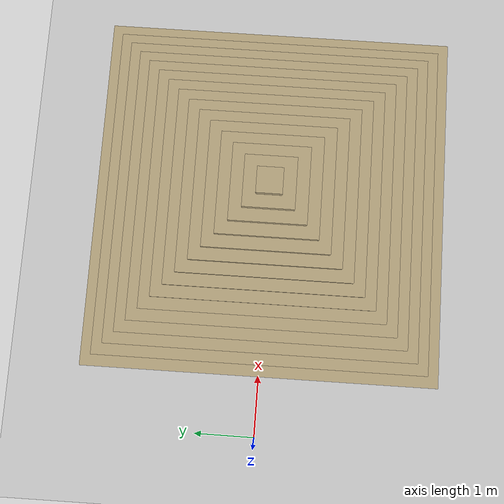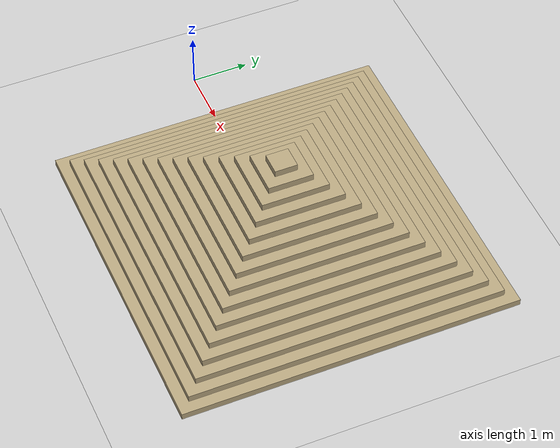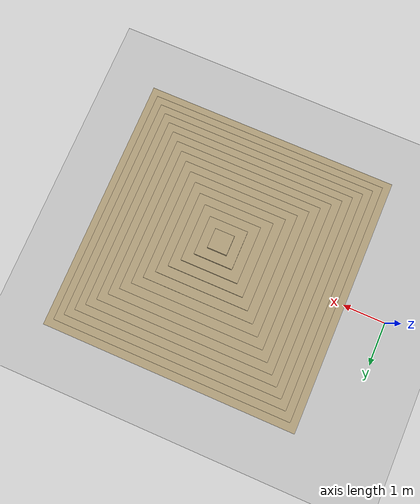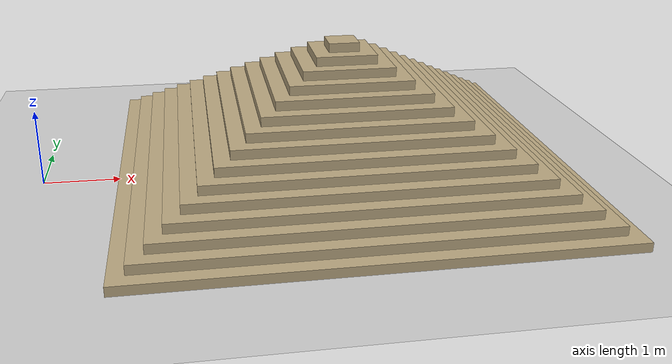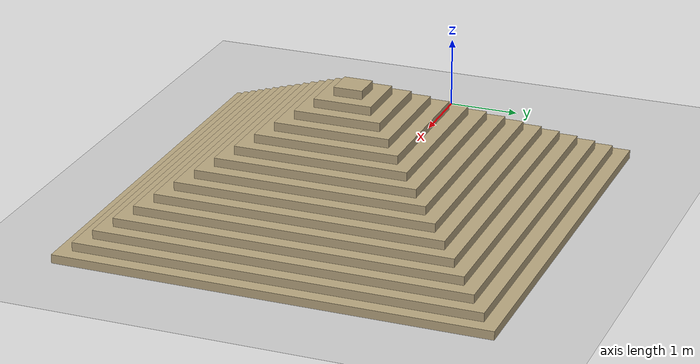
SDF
<?xml version="1.0"?>
<sdf version="1.6">
  <!-- We use a custom world for the rrbot so that the camera angle is launched correctly -->

  <world name="default">

    <plugin
      filename="gz-sim-physics-system"
      name="gz::sim::systems::Physics">
    </plugin>
    <plugin
      filename="gz-sim-air-pressure-system"
      name="gz::sim::systems::AirPressure">
    </plugin>
    <plugin
      filename="gz-sim-altimeter-system"
      name="gz::sim::systems::Altimeter">
    </plugin>
    <plugin
      filename="gz-sim-imu-system"
      name="gz::sim::systems::Imu">
    </plugin>
    <plugin
      filename="gz-sim-sensors-system"
      name="gz::sim::systems::Sensors">
      <render_engine>ogre2</render_engine>
    </plugin>
    <plugin
      filename="gz-sim-magnetometer-system"
      name="gz::sim::systems::Magnetometer">
    </plugin>
    <plugin
      filename="gz-sim-forcetorque-system"
      name="gz::sim::systems::ForceTorque">
    </plugin>
    <plugin
      filename="gz-sim-user-commands-system"
      name="gz::sim::systems::UserCommands">
    </plugin>
    <plugin
      filename="gz-sim-scene-broadcaster-system"
      name="gz::sim::systems::SceneBroadcaster">
    </plugin>
    <gravity>0 0 -9.81</gravity>

    <light type="directional" name="sun">
      <cast_shadows>true</cast_shadows>
      <pose>0 0 10 0 0 0</pose>
      <diffuse>0.8 0.8 0.8 1</diffuse>
      <specular>0.2 0.2 0.2 1</specular>
      <attenuation>
        <range>1000</range>
        <constant>0.9</constant>
        <linear>0.01</linear>
        <quadratic>0.001</quadratic>
      </attenuation>
      <direction>-0.5 0.1 -0.9</direction>
    </light>

    <model name="ground_plane">
      <static>true</static>
      <link name="link">
        <collision name="collision">
          <geometry>
            <plane>
              <normal>0 0 1</normal>
              <size>100 100</size>
            </plane>
          </geometry>
        </collision>
        <visual name="visual">
          <geometry>
            <plane>
              <normal>0 0 1</normal>
              <size>100 100</size>
            </plane>
          </geometry>
          <material>
            <ambient>0.8 0.8 0.8 1</ambient>
            <diffuse>0.8 0.8 0.8 1</diffuse>
            <specular>0.8 0.8 0.8 1</specular>
          </material>
        </visual>
      </link>
    </model>

    <model name="stepped_square_pyramid">
      <static>true</static>
      <pose>4 0 0 0 0 0</pose>
      <link name="pyramid_link">
        <collision name="step_01_collision">
          <pose>0 0 0.06 0 0 0</pose>
          <geometry>
            <box>
              <size>6.0 6.0 0.12</size>
            </box>
          </geometry>
        </collision>
        <visual name="step_01_visual">
          <pose>0 0 0.06 0 0 0</pose>
          <geometry>
            <box>
              <size>6.0 6.0 0.12</size>
            </box>
          </geometry>
          <material>
            <ambient>0.72 0.65 0.50 1</ambient>
            <diffuse>0.72 0.65 0.50 1</diffuse>
          </material>
        </visual>

        <collision name="step_02_collision">
          <pose>0 0 0.18 0 0 0</pose>
          <geometry><box><size>5.6 5.6 0.12</size></box></geometry>
        </collision>
        <visual name="step_02_visual">
          <pose>0 0 0.18 0 0 0</pose>
          <geometry><box><size>5.6 5.6 0.12</size></box></geometry>
          <material><ambient>0.72 0.65 0.50 1</ambient><diffuse>0.72 0.65 0.50 1</diffuse></material>
        </visual>

        <collision name="step_03_collision">
          <pose>0 0 0.30 0 0 0</pose>
          <geometry><box><size>5.2 5.2 0.12</size></box></geometry>
        </collision>
        <visual name="step_03_visual">
          <pose>0 0 0.30 0 0 0</pose>
          <geometry><box><size>5.2 5.2 0.12</size></box></geometry>
          <material><ambient>0.72 0.65 0.50 1</ambient><diffuse>0.72 0.65 0.50 1</diffuse></material>
        </visual>

        <collision name="step_04_collision">
          <pose>0 0 0.42 0 0 0</pose>
          <geometry><box><size>4.8 4.8 0.12</size></box></geometry>
        </collision>
        <visual name="step_04_visual">
          <pose>0 0 0.42 0 0 0</pose>
          <geometry><box><size>4.8 4.8 0.12</size></box></geometry>
          <material><ambient>0.72 0.65 0.50 1</ambient><diffuse>0.72 0.65 0.50 1</diffuse></material>
        </visual>

        <collision name="step_05_collision">
          <pose>0 0 0.54 0 0 0</pose>
          <geometry><box><size>4.4 4.4 0.12</size></box></geometry>
        </collision>
        <visual name="step_05_visual">
          <pose>0 0 0.54 0 0 0</pose>
          <geometry><box><size>4.4 4.4 0.12</size></box></geometry>
          <material><ambient>0.72 0.65 0.50 1</ambient><diffuse>0.72 0.65 0.50 1</diffuse></material>
        </visual>

        <collision name="step_06_collision">
          <pose>0 0 0.66 0 0 0</pose>
          <geometry><box><size>4.0 4.0 0.12</size></box></geometry>
        </collision>
        <visual name="step_06_visual">
          <pose>0 0 0.66 0 0 0</pose>
          <geometry><box><size>4.0 4.0 0.12</size></box></geometry>
          <material><ambient>0.72 0.65 0.50 1</ambient><diffuse>0.72 0.65 0.50 1</diffuse></material>
        </visual>

        <collision name="step_07_collision">
          <pose>0 0 0.78 0 0 0</pose>
          <geometry><box><size>3.6 3.6 0.12</size></box></geometry>
        </collision>
        <visual name="step_07_visual">
          <pose>0 0 0.78 0 0 0</pose>
          <geometry><box><size>3.6 3.6 0.12</size></box></geometry>
          <material><ambient>0.72 0.65 0.50 1</ambient><diffuse>0.72 0.65 0.50 1</diffuse></material>
        </visual>

        <collision name="step_08_collision">
          <pose>0 0 0.90 0 0 0</pose>
          <geometry><box><size>3.2 3.2 0.12</size></box></geometry>
        </collision>
        <visual name="step_08_visual">
          <pose>0 0 0.90 0 0 0</pose>
          <geometry><box><size>3.2 3.2 0.12</size></box></geometry>
          <material><ambient>0.72 0.65 0.50 1</ambient><diffuse>0.72 0.65 0.50 1</diffuse></material>
        </visual>

        <collision name="step_09_collision">
          <pose>0 0 1.02 0 0 0</pose>
          <geometry><box><size>2.8 2.8 0.12</size></box></geometry>
        </collision>
        <visual name="step_09_visual">
          <pose>0 0 1.02 0 0 0</pose>
          <geometry><box><size>2.8 2.8 0.12</size></box></geometry>
          <material><ambient>0.72 0.65 0.50 1</ambient><diffuse>0.72 0.65 0.50 1</diffuse></material>
        </visual>

        <collision name="step_10_collision">
          <pose>0 0 1.14 0 0 0</pose>
          <geometry><box><size>2.4 2.4 0.12</size></box></geometry>
        </collision>
        <visual name="step_10_visual">
          <pose>0 0 1.14 0 0 0</pose>
          <geometry><box><size>2.4 2.4 0.12</size></box></geometry>
          <material><ambient>0.72 0.65 0.50 1</ambient><diffuse>0.72 0.65 0.50 1</diffuse></material>
        </visual>

        <collision name="step_11_collision">
          <pose>0 0 1.26 0 0 0</pose>
          <geometry><box><size>2.0 2.0 0.12</size></box></geometry>
        </collision>
        <visual name="step_11_visual">
          <pose>0 0 1.26 0 0 0</pose>
          <geometry><box><size>2.0 2.0 0.12</size></box></geometry>
          <material><ambient>0.72 0.65 0.50 1</ambient><diffuse>0.72 0.65 0.50 1</diffuse></material>
        </visual>

        <collision name="step_12_collision">
          <pose>0 0 1.38 0 0 0</pose>
          <geometry><box><size>1.6 1.6 0.12</size></box></geometry>
        </collision>
        <visual name="step_12_visual">
          <pose>0 0 1.38 0 0 0</pose>
          <geometry><box><size>1.6 1.6 0.12</size></box></geometry>
          <material><ambient>0.72 0.65 0.50 1</ambient><diffuse>0.72 0.65 0.50 1</diffuse></material>
        </visual>

        <collision name="step_13_collision">
          <pose>0 0 1.50 0 0 0</pose>
          <geometry><box><size>1.2 1.2 0.12</size></box></geometry>
        </collision>
        <visual name="step_13_visual">
          <pose>0 0 1.50 0 0 0</pose>
          <geometry><box><size>1.2 1.2 0.12</size></box></geometry>
          <material><ambient>0.72 0.65 0.50 1</ambient><diffuse>0.72 0.65 0.50 1</diffuse></material>
        </visual>

        <collision name="step_14_collision">
          <pose>0 0 1.62 0 0 0</pose>
          <geometry><box><size>0.8 0.8 0.12</size></box></geometry>
        </collision>
        <visual name="step_14_visual">
          <pose>0 0 1.62 0 0 0</pose>
          <geometry><box><size>0.8 0.8 0.12</size></box></geometry>
          <material><ambient>0.72 0.65 0.50 1</ambient><diffuse>0.72 0.65 0.50 1</diffuse></material>
        </visual>

        <collision name="step_15_collision">
          <pose>0 0 1.74 0 0 0</pose>
          <geometry><box><size>0.4 0.4 0.12</size></box></geometry>
        </collision>
        <visual name="step_15_visual">
          <pose>0 0 1.74 0 0 0</pose>
          <geometry><box><size>0.4 0.4 0.12</size></box></geometry>
          <material><ambient>0.72 0.65 0.50 1</ambient><diffuse>0.72 0.65 0.50 1</diffuse></material>
        </visual>
      </link>
    </model>

    <!-- Focus camera on tall pendulum -->
    <gui fullscreen='0'>
      <camera name='user_camera'>
        <pose>4.927360 -4.376610 3.740080 0.000000 0.275643 2.356190</pose>
        <view_controller>orbit</view_controller>
      </camera>
    </gui>

    <physics name="update_rate" type="ode">
      <real_time_update_rate>2000</real_time_update_rate>
      <max_step_size>0.0015</max_step_size>
      <max_contacts>10</max_contacts>
      <bullet>
        <solver>
          <iters>100</iters>
          <sor>1.55</sor>
        </solver>
        <constraints>
          <contact_surface_layer>0.2</contact_surface_layer>
          <cfm>0.005</cfm>
          <erp>0.2</erp>
        </constraints>
      </bullet>
      <ode>
        <solver>
          <iters>50</iters>
          <sor>1.20</sor>
        </solver>
        <constraints>
          <contact_surface_layer>0.0002</contact_surface_layer>
          <contact_max_correcting_vel>500</contact_max_correcting_vel>
          <cfm>0.000001</cfm>
          <erp>0.3</erp>
        </constraints>
      </ode>
    </physics>

  </world>
</sdf>
